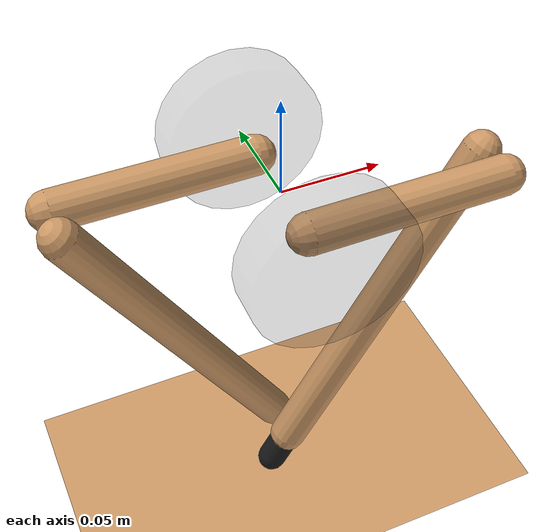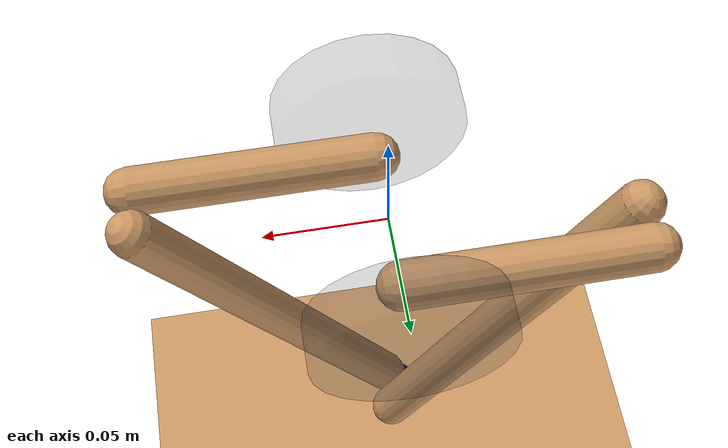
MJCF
<mujoco model="snapper_1d">
	<compiler coordinate="global"/>

	<default>
		<geom rgba=".8 .6 .4 1"/>
	</default>

	<asset>
		<texture type="skybox" builtin="gradient" rgb1="1 1 1" rgb2=".6 .8 1" width="256" height="256"/>
	</asset>

	<worldbody>
		<light pos="0 1 1" dir="0 -1 -1" diffuse="1 1 1"/>

		<body>
			<!--- Geometry for motors --->
			<geom type="cylinder" fromto="0 0.04 0 0 0.06 0" size="0.04" rgba="0.2 0.2 0.2 0.2" />
			<geom type="cylinder" fromto="0 -0.04 0 0 -0.06 0" size="0.04" rgba="0.2 0.2 0.2 0.2" />

			<joint type="slide" pos="0 0 0" axis="0 0 1" />

			<!---- Defines the first leg (hip, femur, knee, tibia) ---->
			<body name="leg1">
				<geom  name="femur1" type="capsule" fromto="0 -0.03 0  0.1 -0.03 0" size="0.01"/>
				<joint name="hip1" type="hinge" pos="0 -0.04 0" axis="0 1 0"/>

				<body name="tibia1">
					<geom type="capsule" fromto="0.1 -0.01 0   0 -0.01 -0.1732" size="0.01" />
					<joint name="knee1" type="hinge" pos="0.1 -0.02 0" axis="0 1 0"/>

					<body>
						<geom name="foot" type="capsule" fromto="0 -0.01 -0.1732  -0.01 -0.01 -0.19052" size="0.008"  rgba="0.1 0.1 0.1 1"/>
					</body>
				</body>
			</body>

			<!---- Defines the second leg (hip, femur, knee, tibia) ---->
			<body name="leg2">
				<geom  name="femur2" type="capsule" fromto="0 0.03 0 -0.1 0.03 0" size="0.01"/>
				<joint name="hip2"   type="hinge" pos="0 0.02 0" axis="0 1 0"/>

				<body name="tibia2">
					<geom type="capsule" fromto="-0.1 0.01 0 0 0.01 -0.1732" size="0.01"/>
					<joint name="knee2"  type="hinge" pos="-0.1 0.01 0" axis="0 1 0"/>
				</body>
			</body>
		</body>
		<geom type="plane" pos="0 0 -0.2"  size="1 1 0.1"/>

	</worldbody>

	<equality>
		<connect body1="tibia1" body2="tibia2" anchor="0 0 -0.1732" />
	</equality>

	<actuator>
		<position name="u1" kp="5" joint="hip1" />
		<velocity name="u2" kv="0.1" joint="hip1" />

		<position name="u3" kp="5" joint="hip2" />
		<velocity name="u4" kv="0.1" joint="hip2" />
	</actuator>

</mujoco>
